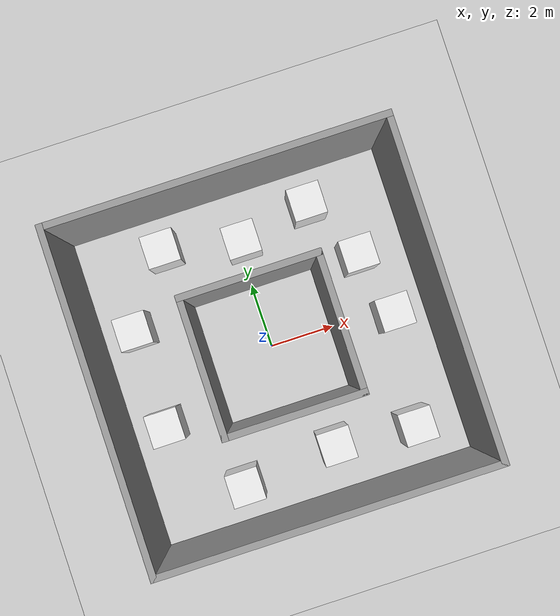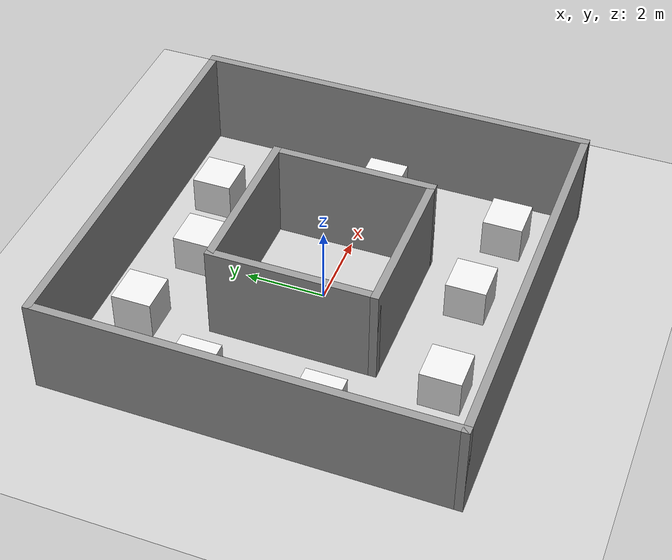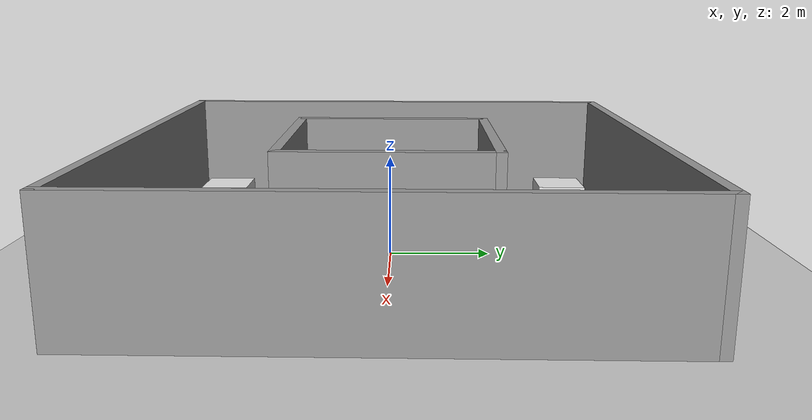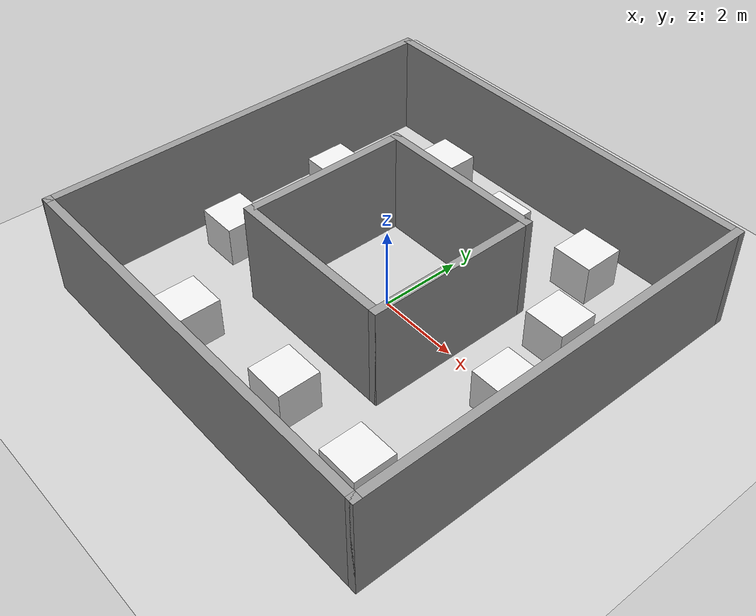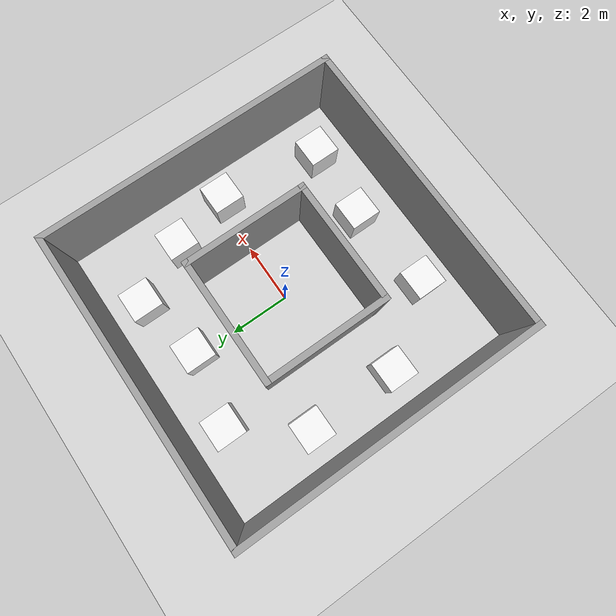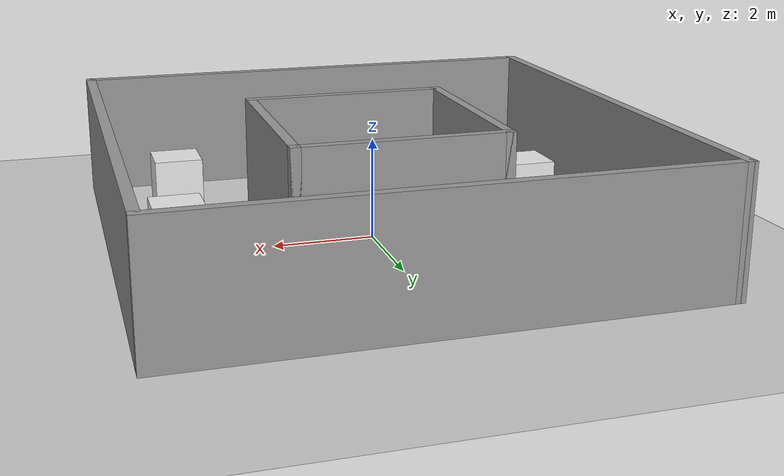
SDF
<sdf version="1.4">
 <world name="default">
  <light name="sun" type="directional">
   <pose>0 0 10 0 -0 0</pose>
   <diffuse>0.8 0.8 0.8 1</diffuse>
   <specular>0.2 0.2 0.2 1</specular>
   <attenuation>
    <range>1000</range>
    <constant>0.9</constant>
    <linear>0.01</linear>
    <quadratic>0.001</quadratic>
   </attenuation>
   <direction>-0.5 0.1 -0.9</direction>
  </light>
  <model name="ground_plane">
   <static>1</static>
   <link name="link">
    <collision name="collision">
     <geometry><plane><normal>0 0 1</normal><size>100 100</size></plane></geometry>
     <surface><friction><ode><mu>100</mu><mu2>50</mu2></ode></friction></surface>
    </collision>
    <visual name="visual">
     <cast_shadows>0</cast_shadows>
     <geometry><plane><normal>0 0 1</normal><size>100 100</size></plane></geometry>
     <material>
      <script><uri>file://media/materials/scripts/gazebo.material</uri><name>Gazebo/Grey</name></script>
     </material>
    </visual>
    <velocity_decay><linear>0</linear><angular>0</angular></velocity_decay>
   </link>
  </model>
  <physics type="ode">
   <max_step_size>0.01</max_step_size>
   <real_time_factor>1</real_time_factor>
   <real_time_update_rate>100</real_time_update_rate>
   <gravity>0 0 -9.8</gravity>
  </physics>
  <model name="prison">
   <link name="Wall_0">
    <collision name="Wall_0_Collision">
     <geometry><box><size>10.2 0.2 2.5</size></box></geometry>
     <pose>0 0 1.25 0 -0 0</pose>
    </collision>
    <visual name="Wall_0_Visual">
     <pose>0 0 1.25 0 -0 0</pose>
     <geometry><box><size>10.2 0.2 2.5</size></box></geometry>
     <material>
      <script><uri>file://media/materials/scripts/gazebo.material</uri><name>Gazebo/Grey</name></script>
     </material>
    </visual>
    <velocity_decay><linear>0</linear><angular>0</angular></velocity_decay>
    <pose>-5 0 0 0 -0 1.5708</pose>
   </link>
   <link name="Wall_10">
    <collision name="Wall_10_Collision">
     <geometry><box><size>10.2 0.2 2.5</size></box></geometry>
     <pose>0 0 1.25 0 -0 0</pose>
    </collision>
    <visual name="Wall_10_Visual">
     <pose>0 0 1.25 0 -0 0</pose>
     <geometry><box><size>10.2 0.2 2.5</size></box></geometry>
     <material>
      <script><uri>file://media/materials/scripts/gazebo.material</uri><name>Gazebo/Grey</name></script>
     </material>
    </visual>
    <velocity_decay><linear>0</linear><angular>0</angular></velocity_decay>
    <pose>5 0 0 0 -0 1.5708</pose>
   </link>
   <link name="Wall_12">
    <collision name="Wall_12_Collision">
     <geometry><box><size>4.2 0.2 2.5</size></box></geometry>
     <pose>0 0 1.25 0 -0 0</pose>
    </collision>
    <visual name="Wall_12_Visual">
     <pose>0 0 1.25 0 -0 0</pose>
     <geometry><box><size>4.2 0.2 2.5</size></box></geometry>
     <material>
      <script><uri>file://media/materials/scripts/gazebo.material</uri><name>Gazebo/Grey</name></script>
     </material>
    </visual>
    <velocity_decay><linear>0</linear><angular>0</angular></velocity_decay>
    <pose>0 2 0 0 -0 0</pose>
   </link>
   <link name="Wall_14">
    <collision name="Wall_14_Collision">
     <geometry><box><size>4.2 0.2 2.5</size></box></geometry>
     <pose>0 0 1.25 0 -0 0</pose>
    </collision>
    <visual name="Wall_14_Visual">
     <pose>0 0 1.25 0 -0 0</pose>
     <geometry><box><size>4.2 0.2 2.5</size></box></geometry>
     <material>
      <script><uri>file://media/materials/scripts/gazebo.material</uri><name>Gazebo/Grey</name></script>
     </material>
    </visual>
    <velocity_decay><linear>0</linear><angular>0</angular></velocity_decay>
    <pose>-2 0 0 0 -0 1.5708</pose>
   </link>
   <link name="Wall_17">
    <collision name="Wall_17_Collision">
     <geometry><box><size>4.2 0.2 2.5</size></box></geometry>
     <pose>0 0 1.25 0 -0 0</pose>
    </collision>
    <visual name="Wall_17_Visual">
     <pose>0 0 1.25 0 -0 0</pose>
     <geometry><box><size>4.2 0.2 2.5</size></box></geometry>
     <material>
      <script><uri>file://media/materials/scripts/gazebo.material</uri><name>Gazebo/Grey</name></script>
     </material>
    </visual>
    <velocity_decay><linear>0</linear><angular>0</angular></velocity_decay>
    <pose>2 0 0 0 -0 1.5708</pose>
   </link>
   <link name="Wall_19">
    <collision name="Wall_19_Collision">
     <geometry><box><size>4.2 0.2 2.5</size></box></geometry>
     <pose>0 0 1.25 0 -0 0</pose>
    </collision>
    <visual name="Wall_19_Visual">
     <pose>0 0 1.25 0 -0 0</pose>
     <geometry><box><size>4.2 0.2 2.5</size></box></geometry>
     <material>
      <script><uri>file://media/materials/scripts/gazebo.material</uri><name>Gazebo/Grey</name></script>
     </material>
    </visual>
    <velocity_decay><linear>0</linear><angular>0</angular></velocity_decay>
    <pose>0 -2 0 0 -0 0</pose>
   </link>
   <link name="Wall_2">
    <collision name="Wall_2_Collision">
     <geometry><box><size>10.2 0.2 2.5</size></box></geometry>
     <pose>0 0 1.25 0 -0 0</pose>
    </collision>
    <visual name="Wall_2_Visual">
     <pose>0 0 1.25 0 -0 0</pose>
     <geometry><box><size>10.2 0.2 2.5</size></box></geometry>
     <material>
      <script><uri>file://media/materials/scripts/gazebo.material</uri><name>Gazebo/Grey</name></script>
     </material>
    </visual>
    <velocity_decay><linear>0</linear><angular>0</angular></velocity_decay>
    <pose>0 5 0 0 -0 0</pose>
   </link>
   <link name="Wall_7">
    <collision name="Wall_7_Collision">
     <geometry><box><size>10.2 0.2 2.5</size></box></geometry>
     <pose>0 0 1.25 0 -0 0</pose>
    </collision>
    <visual name="Wall_7_Visual">
     <pose>0 0 1.25 0 -0 0</pose>
     <geometry><box><size>10.2 0.2 2.5</size></box></geometry>
     <material>
      <script><uri>file://media/materials/scripts/gazebo.material</uri><name>Gazebo/Grey</name></script>
     </material>
    </visual>
    <velocity_decay><linear>0</linear><angular>0</angular></velocity_decay>
    <pose>0 -5 0 0 -0 0</pose>
   </link>
   <static>1</static>
  </model>
  <model name="box_wall">
   <pose>-3.78932 1.69627 0.5 0 -0 0</pose>
   <link name="link">
    <inertial>
     <mass>1</mass>
     <inertia><ixx>1</ixx><ixy>0</ixy><ixz>0</ixz><iyy>1</iyy><iyz>0</iyz><izz>1</izz></inertia>
    </inertial>
    <collision name="collision"><geometry><box><size>0.63116 0.613732 1.15025</size></box></geometry></collision>
    <visual name="visual">
     <geometry><box><size>1 1 1</size></box></geometry>
     <material>
      <script><uri>file://media/materials/scripts/gazebo.material</uri><name>Gazebo/White</name></script>
     </material>
    </visual>
    <velocity_decay><linear>0</linear><angular>0</angular></velocity_decay>
    <gravity>0</gravity>
   </link>
   <static>1</static>
  </model>
  <model name="box_wall_1">
   <pose>3.32224 1.82107 0.5 0 -0 0</pose>
   <link name="link">
    <inertial>
     <mass>1</mass>
     <inertia><ixx>1</ixx><ixy>0</ixy><ixz>0</ixz><iyy>1</iyy><iyz>0</iyz><izz>1</izz></inertia>
    </inertial>
    <collision name="collision"><geometry><box><size>0.63116 0.613732 1.15025</size></box></geometry></collision>
    <visual name="visual">
     <geometry><box><size>1 1 1</size></box></geometry>
     <material>
      <script><uri>file://media/materials/scripts/gazebo.material</uri><name>Gazebo/White</name></script>
     </material>
    </visual>
    <velocity_decay><linear>0</linear><angular>0</angular></velocity_decay>
    <gravity>0</gravity>
   </link>
   <static>1</static>
  </model>
  <model name="box_wall_2">
   <pose>3.38245 -3.61027 0.5 0 -0 0</pose>
   <link name="link">
    <inertial>
     <mass>1</mass>
     <inertia><ixx>1</ixx><ixy>0</ixy><ixz>0</ixz><iyy>1</iyy><iyz>0</iyz><izz>1</izz></inertia>
    </inertial>
    <collision name="collision"><geometry><box><size>0.63116 0.613732 1.15025</size></box></geometry></collision>
    <visual name="visual">
     <geometry><box><size>1 1 1</size></box></geometry>
     <material>
      <script><uri>file://media/materials/scripts/gazebo.material</uri><name>Gazebo/White</name></script>
     </material>
    </visual>
    <velocity_decay><linear>0</linear><angular>0</angular></velocity_decay>
    <gravity>0</gravity>
   </link>
   <static>1</static>
  </model>
  <model name="box_wall_3">
   <pose>0.90784 -3.42167 0.5 0 -0 0</pose>
   <link name="link">
    <inertial>
     <mass>1</mass>
     <inertia><ixx>1</ixx><ixy>0</ixy><ixz>0</ixz><iyy>1</iyy><iyz>0</iyz><izz>1</izz></inertia>
    </inertial>
    <collision name="collision"><geometry><box><size>0.63116 0.613732 1.15025</size></box></geometry></collision>
    <visual name="visual">
     <geometry><box><size>1 1 1</size></box></geometry>
     <material>
      <script><uri>file://media/materials/scripts/gazebo.material</uri><name>Gazebo/White</name></script>
     </material>
    </visual>
    <velocity_decay><linear>0</linear><angular>0</angular></velocity_decay>
    <gravity>0</gravity>
   </link>
   <static>1</static>
  </model>
  <model name="box_wall_4">
   <pose>3.8002 -0.181412 0.5 0 -0 0</pose>
   <link name="link">
    <inertial>
     <mass>1</mass>
     <inertia><ixx>1</ixx><ixy>0</ixy><ixz>0</ixz><iyy>1</iyy><iyz>0</iyz><izz>1</izz></inertia>
    </inertial>
    <collision name="collision"><geometry><box><size>0.63116 0.613732 1.15025</size></box></geometry></collision>
    <visual name="visual">
     <geometry><box><size>1 1 1</size></box></geometry>
     <material>
      <script><uri>file://media/materials/scripts/gazebo.material</uri><name>Gazebo/White</name></script>
     </material>
    </visual>
    <velocity_decay><linear>0</linear><angular>0</angular></velocity_decay>
    <gravity>0</gravity>
   </link>
   <static>1</static>
  </model>
  <model name="box_wall_5">
   <pose>-2.04577 -3.73504 0.5 0 -0 0</pose>
   <link name="link">
    <inertial>
     <mass>1</mass>
     <inertia><ixx>1</ixx><ixy>0</ixy><ixz>0</ixz><iyy>1</iyy><iyz>0</iyz><izz>1</izz></inertia>
    </inertial>
    <collision name="collision"><geometry><box><size>0.63116 0.613732 1.15025</size></box></geometry></collision>
    <visual name="visual">
     <geometry><box><size>1 1 1</size></box></geometry>
     <material>
      <script><uri>file://media/materials/scripts/gazebo.material</uri><name>Gazebo/White</name></script>
     </material>
    </visual>
    <velocity_decay><linear>0</linear><angular>0</angular></velocity_decay>
    <gravity>0</gravity>
   </link>
   <static>1</static>
  </model>
  <model name="box_wall_6">
   <pose>-3.7695 -1.32256 0.5 0 -0 0</pose>
   <link name="link">
    <inertial>
     <mass>1</mass>
     <inertia><ixx>1</ixx><ixy>0</ixy><ixz>0</ixz><iyy>1</iyy><iyz>0</iyz><izz>1</izz></inertia>
    </inertial>
    <collision name="collision"><geometry><box><size>0.63116 0.613732 1.15025</size></box></geometry></collision>
    <visual name="visual">
     <geometry><box><size>1 1 1</size></box></geometry>
     <material>
      <script><uri>file://media/materials/scripts/gazebo.material</uri><name>Gazebo/White</name></script>
     </material>
    </visual>
    <velocity_decay><linear>0</linear><angular>0</angular></velocity_decay>
    <gravity>0</gravity>
   </link>
   <static>1</static>
  </model>
  <model name="box_wall_7">
   <pose>0.116961 3.28764 0.5 0 -0 0</pose>
   <link name="link">
    <inertial>
     <mass>1</mass>
     <inertia><ixx>1</ixx><ixy>0</ixy><ixz>0</ixz><iyy>1</iyy><iyz>0</iyz><izz>1</izz></inertia>
    </inertial>
    <collision name="collision"><geometry><box><size>0.63116 0.613732 1.15025</size></box></geometry></collision>
    <visual name="visual">
     <geometry><box><size>1 1 1</size></box></geometry>
     <material>
      <script><uri>file://media/materials/scripts/gazebo.material</uri><name>Gazebo/White</name></script>
     </material>
    </visual>
    <velocity_decay><linear>0</linear><angular>0</angular></velocity_decay>
    <gravity>0</gravity>
   </link>
   <static>1</static>
  </model>
  <model name="box_wall_8">
   <pose>-2.25191 3.77501 0.5 0 -0 0</pose>
   <link name="link">
    <inertial>
     <mass>1</mass>
     <inertia><ixx>1</ixx><ixy>0</ixy><ixz>0</ixz><iyy>1</iyy><iyz>0</iyz><izz>1</izz></inertia>
    </inertial>
    <collision name="collision"><geometry><box><size>0.63116 0.613732 1.15025</size></box></geometry></collision>
    <visual name="visual">
     <geometry><box><size>1 1 1</size></box></geometry>
     <material>
      <script><uri>file://media/materials/scripts/gazebo.material</uri><name>Gazebo/White</name></script>
     </material>
    </visual>
    <velocity_decay><linear>0</linear><angular>0</angular></velocity_decay>
    <gravity>0</gravity>
   </link>
   <static>1</static>
  </model>
  <model name="box_wall_9">
   <pose>2.32444 3.75655 0.5 0 -0 0</pose>
   <link name="link">
    <inertial>
     <mass>1</mass>
     <inertia><ixx>1</ixx><ixy>0</ixy><ixz>0</ixz><iyy>1</iyy><iyz>0</iyz><izz>1</izz></inertia>
    </inertial>
    <collision name="collision"><geometry><box><size>0.63116 0.613732 1.15025</size></box></geometry></collision>
    <visual name="visual">
     <geometry><box><size>1 1 1</size></box></geometry>
     <material>
      <script><uri>file://media/materials/scripts/gazebo.material</uri><name>Gazebo/White</name></script>
     </material>
    </visual>
    <velocity_decay><linear>0</linear><angular>0</angular></velocity_decay>
    <gravity>0</gravity>
   </link>
   <static>1</static>
  </model>
  <scene><ambient>0.4 0.4 0.4 1</ambient><background>0.7 0.7 0.7 1</background><shadows>1</shadows></scene>
  <spherical_coordinates>
   <surface_model>EARTH_WGS84</surface_model>
   <latitude_deg>0</latitude_deg>
   <longitude_deg>0</longitude_deg>
   <elevation>0</elevation>
   <heading_deg>0</heading_deg>
  </spherical_coordinates>
 </world>
</sdf>
